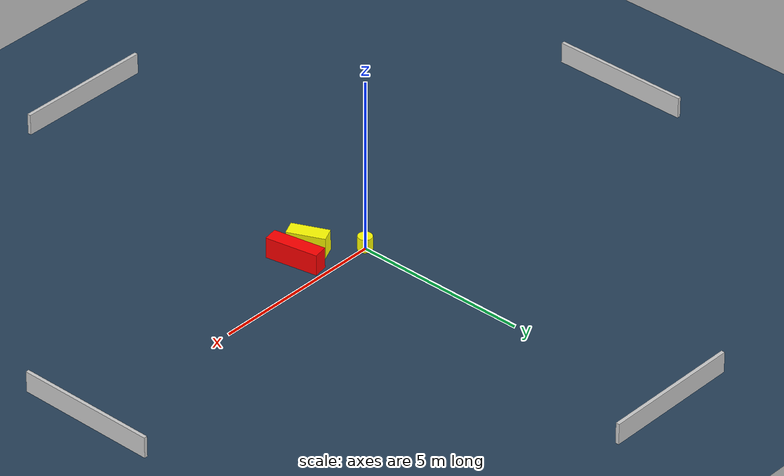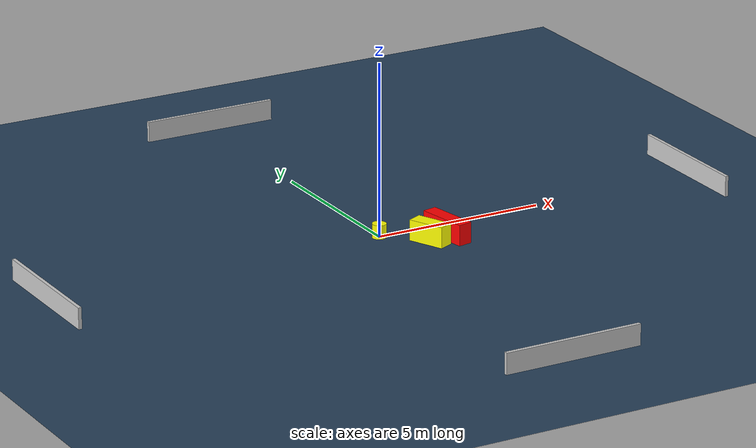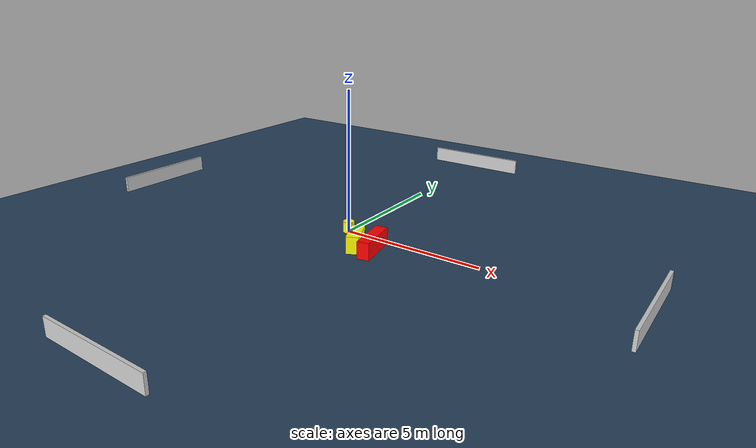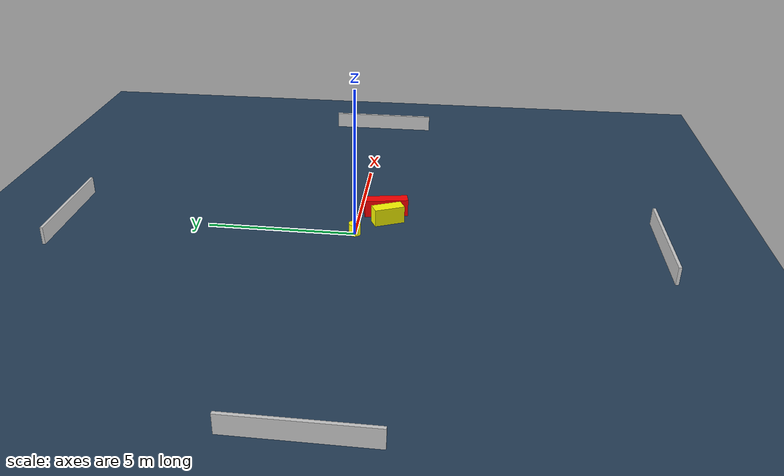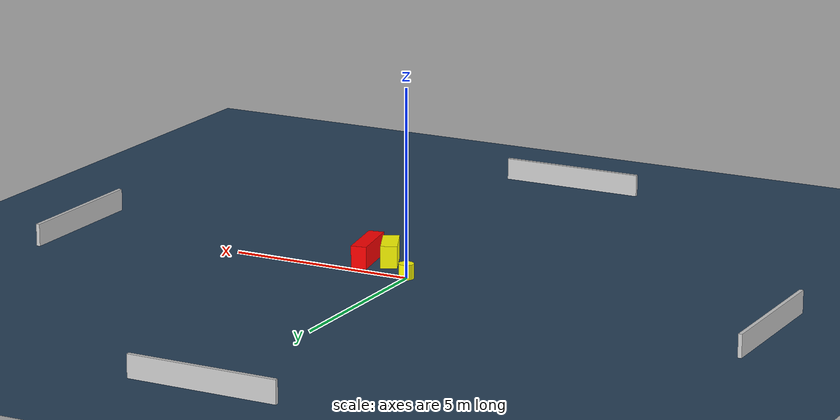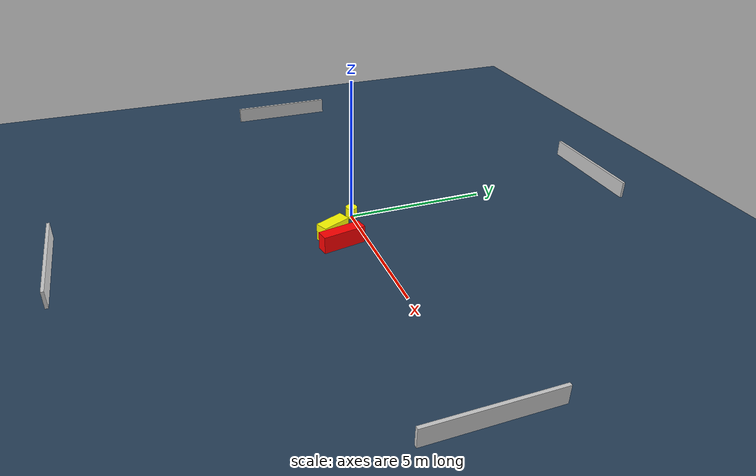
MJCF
<?xml version="1.0" ?>
<mujoco model="generated_environment">
  <option timestep="0.01" integrator="RK4" cone="elliptic"/>
  <default>
    <geom density="1"/>
  </default>
  <asset>
    <texture builtin="gradient" height="3072" name="skybox" rgb1="0.3 0.5 0.7" rgb2="0 0 0" type="skybox" width="512"/>
    <texture builtin="checker" height="300" name="groundplane" rgb1="0.2 0.3 0.4" rgb2="0.1 0.2 0.3" type="2d" width="300"/>
    <material name="groundplane" reflectance="0.2" texrepeat="5 5" texture="groundplane"/>
  </asset>
  <worldbody>
    <light dir="0 0 -1" directional="true" pos="0 0 1.5"/>
    <geom condim="3" friction="0.5 0.005 0.001" material="groundplane" name="floor" pos="0 0 0" size="0 0 0.05" type="plane"/>
    <body name="walls">
      <geom name="wall_1" condim="4" pos="-10.0 0.0 0.3" rgba="0.800000011920929 0.800000011920929 0.800000011920929 1.0" size="0.05 2.0 0.3" type="box"/>
      <geom name="wall_2" condim="4" pos="10.0 0.0 0.3" rgba="0.800000011920929 0.800000011920929 0.800000011920929 1.0" size="0.05 2.0 0.3" type="box"/>
      <geom name="wall_3" condim="4" pos="0.0 -10.0 0.3" rgba="0.800000011920929 0.800000011920929 0.800000011920929 1.0" size="2.0 0.05 0.3" type="box"/>
      <geom name="wall_4" condim="4" pos="0.0 10.0 0.3" rgba="0.800000011920929 0.800000011920929 0.800000011920929 1.0" size="2.0 0.05 0.3" type="box"/>
    </body>
    <body name="robot">
      <joint name="joint_x" type="slide" pos="0 0 0" axis="1 0 0"/>
      <joint name="joint_y" type="slide" pos="0 0 0" axis="0 1 0"/>
      <geom name="robot" type="cylinder" pos="0.0 0.0 0.2" size="0.2 0.2 0.0" mass="5.0" friction="1.0 0.005 0.0001" condim="4" rgba="1.0 1.0 0.0 1.0"/>
    </body>
    <body name="obstacle_1_movable">
      <geom name="obstacle_1_movable" condim="4" pos="1.0184956573095858 -1.0157253614195454 0.3" euler="0 0 204.60863760623758" friction="0.0 0.005 0.001" rgba="1.0 1.0 0.0 1.0" size="0.219389974397608 0.5276690428444053 0.3" type="box" mass="0.1"/>
      <joint type="free"/>
    </body>
    <body name="obstacle_2_static">
      <geom name="obstacle_2_static" condim="4" pos="1.6208644528565714 -0.8960316474297779 0.3" euler="0 0 10.465964999370865" friction="0.0 0.005 0.001" rgba="1.0 0.0 0.0 1.0" size="0.20823449107169537 0.7517346229608275 0.3" type="box"/>
    </body>
  </worldbody>
  <actuator>
    <motor name="actuator_x" joint="joint_x" gear="1" ctrlrange="-1 1"/>
    <motor name="actuator_y" joint="joint_y" gear="1" ctrlrange="-1 1"/>
  </actuator>
</mujoco>
